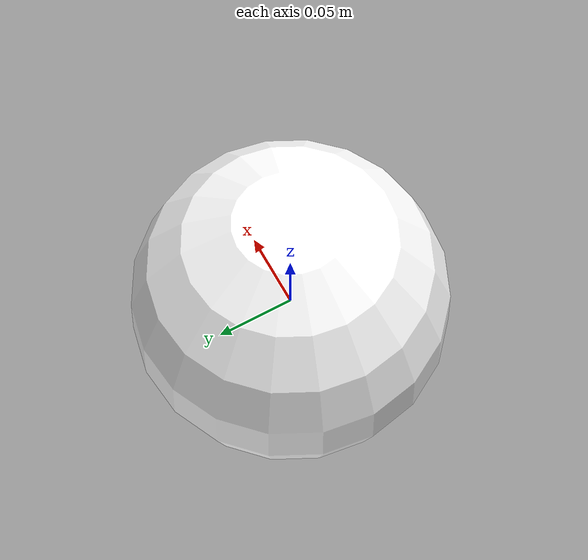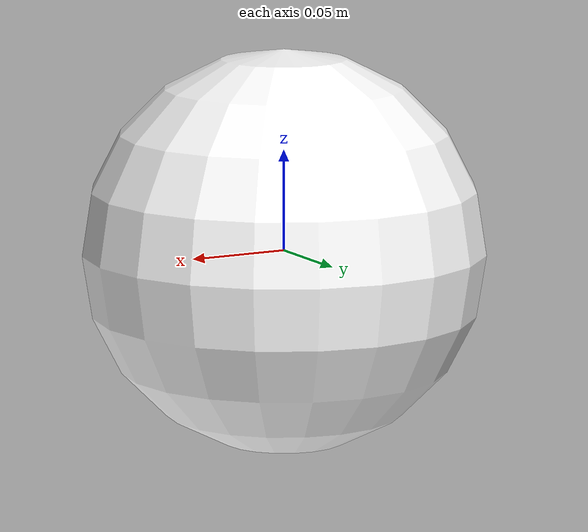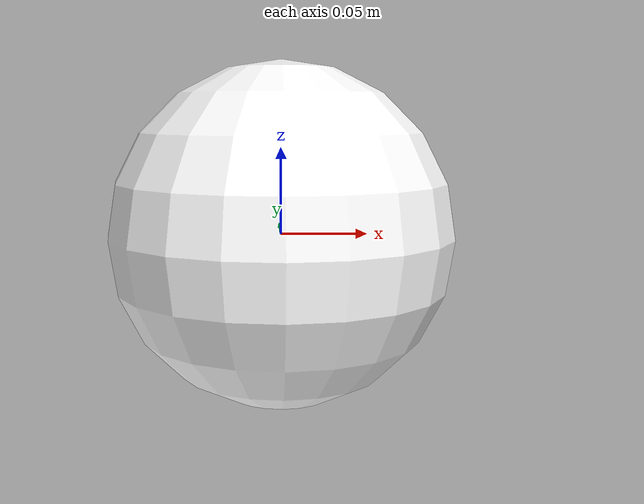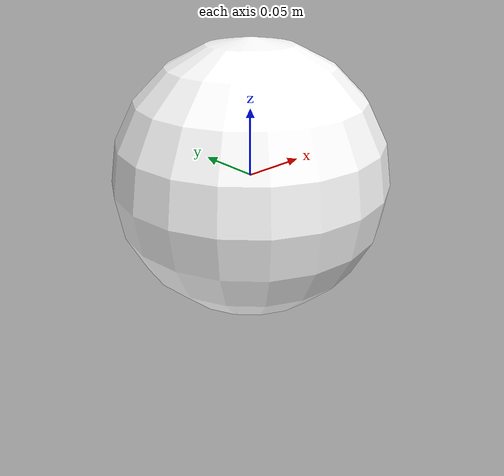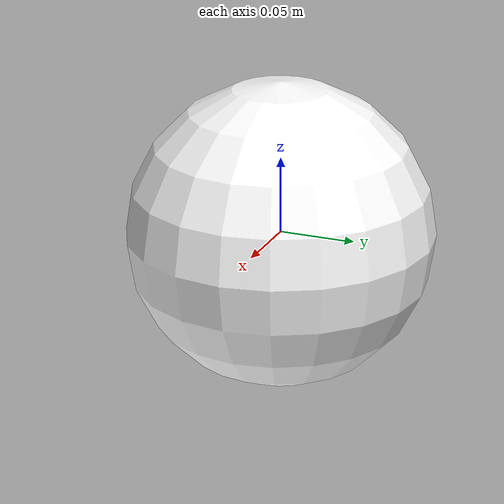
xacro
<?xml version="1.0"?>

<robot name="swarm_agent" xmlns:xacro="http://www.ros.org/wiki/xacro">

  <xacro:include filename="$(find topological_swarm)/urdf/agent.gazebo" />

  <material name="white">
    <color rgba="1.0 1.0 1.0 1.0"/>
  </material>

  <!-- root link, on the ground just below the model origin -->
  <link name="base_footprint">
    <visual>
      <origin xyz="0 0 0" rpy="0 0 0" />
      <geometry>
        <box size="0.01 0.01 0.01" />
      </geometry>
    </visual>
    <material name="white"/>
  </link>

  <joint name="base_link_joint" type="fixed">
    <origin xyz="0.0 0.0 0.0" rpy="0 0 0" />
    <parent link="base_footprint"/>
    <child link="base_link" />
  </joint>

  <!-- the spherical model -->
  <link name="base_link">
    <inertial>
      <mass value="50" />
      <origin xyz="0 0 0" />
      <inertia ixx="50.0" ixy="0.0" ixz="0.0"
        iyy="50.0" iyz="0.0"
        izz="50.0" />
    </inertial>
    <collision>
      <origin xyz="0 0 0" rpy=" 0 0 0"/>
      <geometry>
        <sphere radius="0.1"/>
      </geometry>
    </collision>
    <visual>
      <origin xyz="0 0 0" rpy=" 0 0 0"/>
      <geometry>
        <sphere radius="0.1"/>
      </geometry>
      <material name="white"/>
    </visual>
  </link>

</robot>
